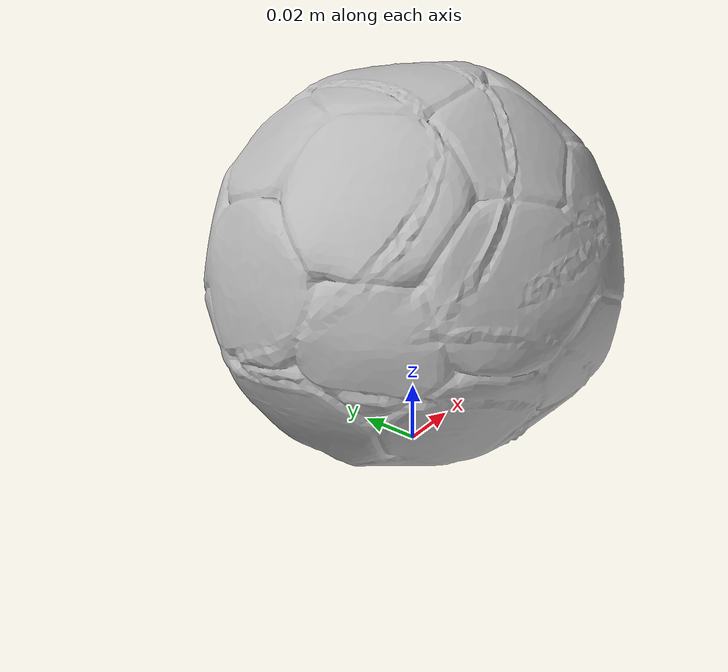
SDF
<?xml version="1.0" ?>
<sdf version='1.8'>
  <model name='ycb_053_mini_soccer_ball'>
    <link name='body'>
      <inertial>
        <mass>0.123</mass>
        <pose>-0.000157591431 0.000852561801 0.0616175534 0 0 0</pose>
        <inertia>
          <ixx>0.00019528110826</ixx>
          <ixy>1.22782118378e-06</ixy>
          <ixz>2.08950715463e-06</ixz>
          <iyy>0.000195681378984</iyy>
          <iyz>4.26617823389e-06</iyz>
          <izz>0.000195587066226</izz>
        </inertia>
      </inertial>
      <visual name='ycb_053_mini_soccer_ball_visual'>
        <pose>0.005755 -0.010678 0.000302 0 0 0</pose>
        <geometry>
          <mesh>
            <uri>model://ycb_053_mini_soccer_ball/meshes/textured.dae</uri>
          </mesh>
        </geometry>
      </visual>
      <collision name='ycb_053_mini_soccer_ball_collision'>
        <pose>0.005755 -0.010678 0.000302 0 0 0</pose>
        <geometry>
          <mesh>
            <uri>model://ycb_053_mini_soccer_ball/meshes/nontextured.stl</uri>
          </mesh>
        </geometry>
        <max_contacts>10</max_contacts>
        <surface>
          <contact>
            <ode>
              <kp>1e15</kp>
              <kd>1e13</kd>
            </ode>
          </contact>
        </surface>
      </collision>
    </link>
  </model>
</sdf>
